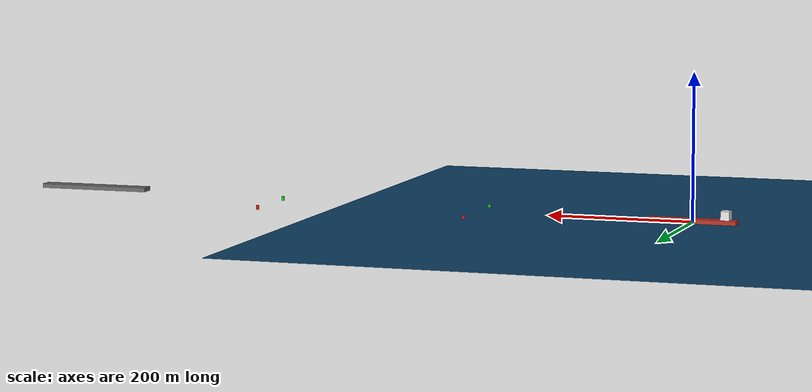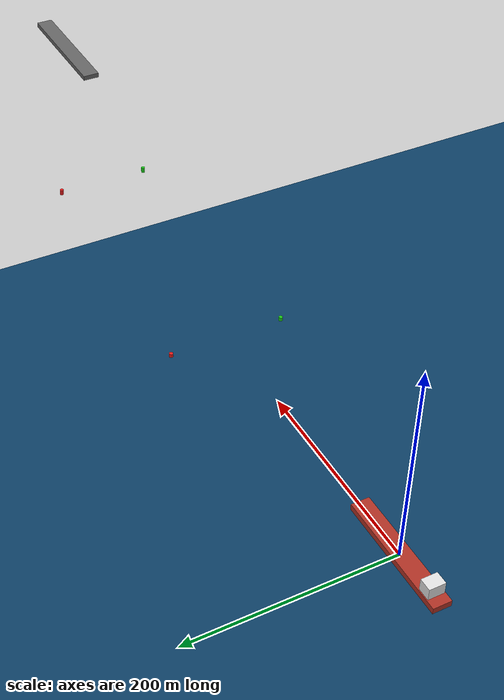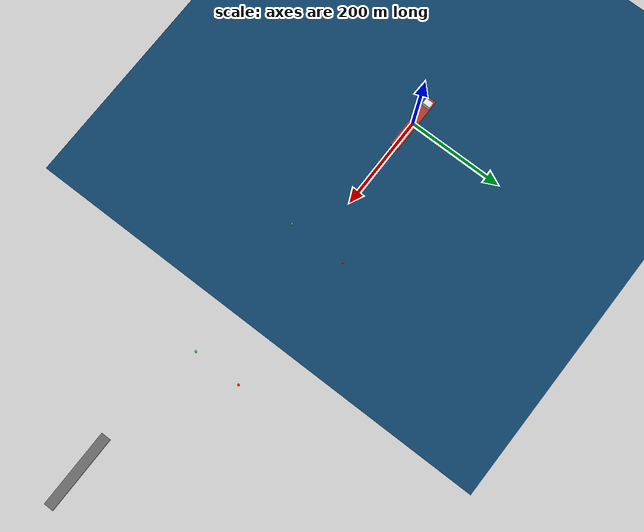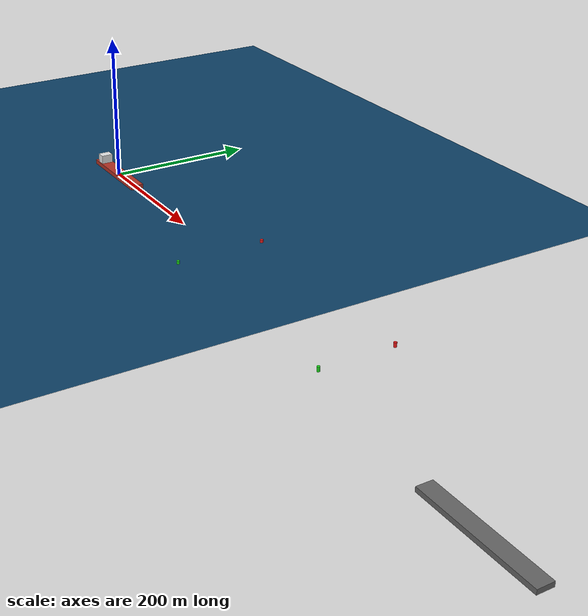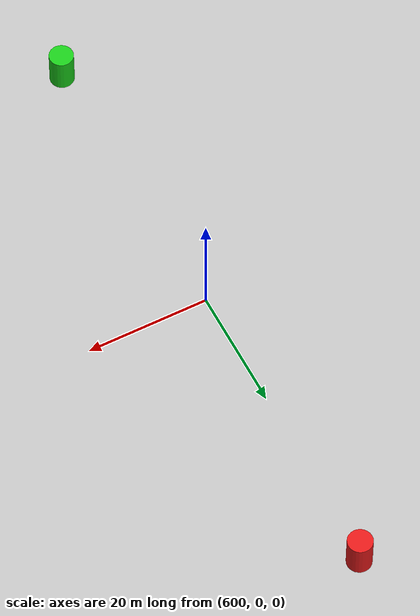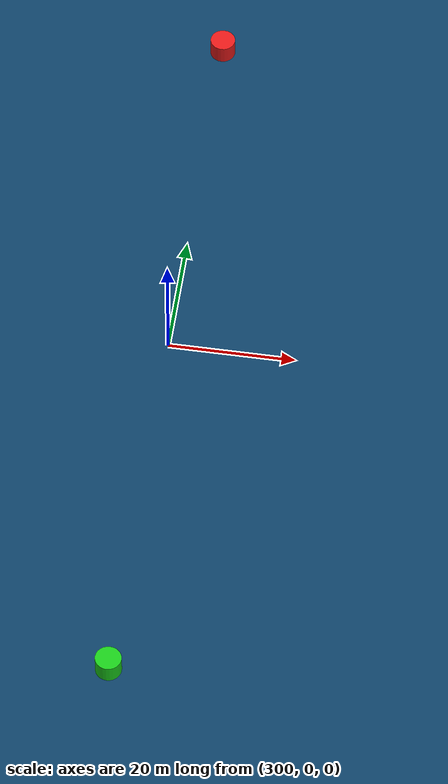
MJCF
<mujoco model="navisense_ship">
  <option timestep="0.02" gravity="0 0 0" integrator="RK4"/>
  <!-- gravity off: buoyancy handled by keeping hull on z=0 plane via hydro model -->

  <visual>
    <headlight ambient="0.4 0.4 0.4"/>
  </visual>

  <asset>
    <texture name="water" type="2d" builtin="flat" rgb1="0.05 0.25 0.4" width="256" height="256"/>
    <material name="water_mat" texture="water" reflectance="0.3"/>
    <material name="hull_mat" rgba="0.7 0.2 0.15 1"/>
    <material name="bridge_mat" rgba="0.9 0.9 0.9 1"/>
    <material name="buoy_red" rgba="0.9 0.1 0.1 1"/>
    <material name="buoy_green" rgba="0.1 0.8 0.1 1"/>
  </asset>

  <worldbody>
    <!-- Water plane (visual reference only) -->
    <geom name="sea" type="plane" size="500 500 0.1" material="water_mat" contype="0" conaffinity="0"/>

    <!-- Ship: single free-floating rigid body.
         Dimensions approx. a 120m coaster scaled 1:1 (units = meters).
         Hydrodynamic forces are applied externally each step (hydro.py). -->
    <body name="ship" pos="0 0 0">
      <freejoint name="ship_free"/>
      <!-- mass ~8.0e6 kg; inertia approximated as solid box 120 x 18 x 10 m -->
      <inertial pos="0 0 0" mass="8.0e6" diaginertia="2.8e8 1.03e10 1.05e10"/>
      <geom name="hull" type="box" size="60 9 5" material="hull_mat" contype="1" conaffinity="1"/>
      <geom name="bridge" type="box" size="6 8 6" pos="-45 0 11" material="bridge_mat" contype="0" conaffinity="0"/>
      <site name="stern" pos="-60 0 0" size="0.5"/>
      <site name="bow" pos="60 0 0" size="0.5"/>
    </body>

    <!-- Channel buoys: port (red) / starboard (green), simple berthing scenario -->
    <body name="buoy_p1" pos="300 60 0"><geom type="cylinder" size="2 3" material="buoy_red" contype="1" conaffinity="1"/></body>
    <body name="buoy_s1" pos="300 -60 0"><geom type="cylinder" size="2 3" material="buoy_green" contype="1" conaffinity="1"/></body>
    <body name="buoy_p2" pos="600 50 0"><geom type="cylinder" size="2 3" material="buoy_red" contype="1" conaffinity="1"/></body>
    <body name="buoy_s2" pos="600 -50 0"><geom type="cylinder" size="2 3" material="buoy_green" contype="1" conaffinity="1"/></body>
    <body name="berth" pos="900 -80 0"><geom type="box" size="80 10 3" rgba="0.4 0.4 0.4 1" contype="1" conaffinity="1"/></body>
  </worldbody>
</mujoco>
